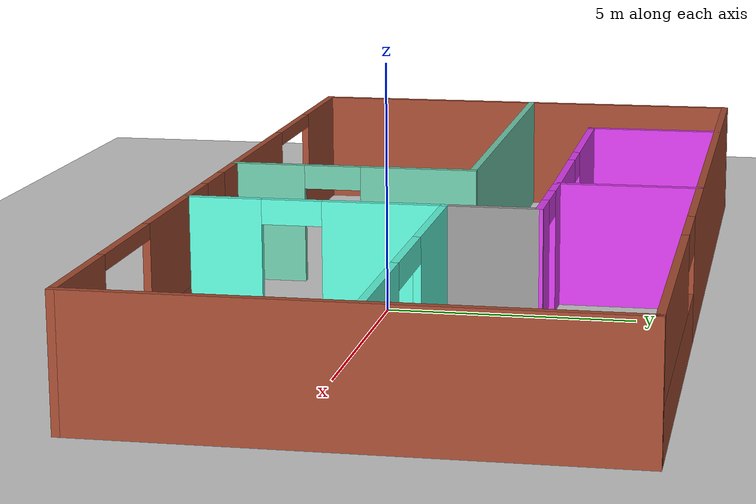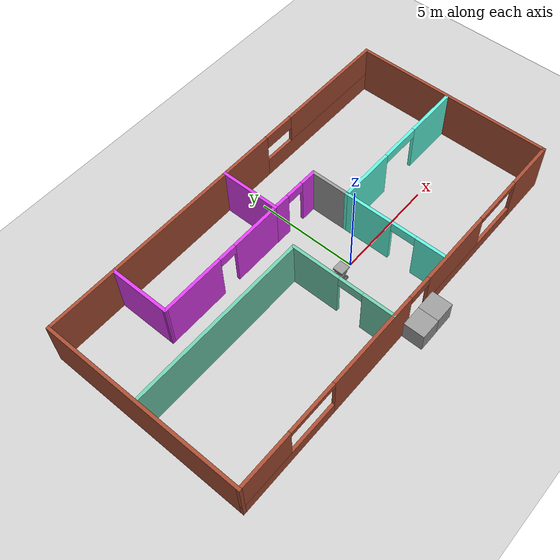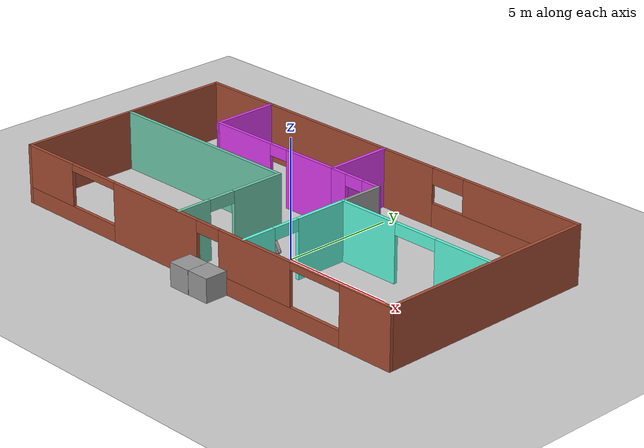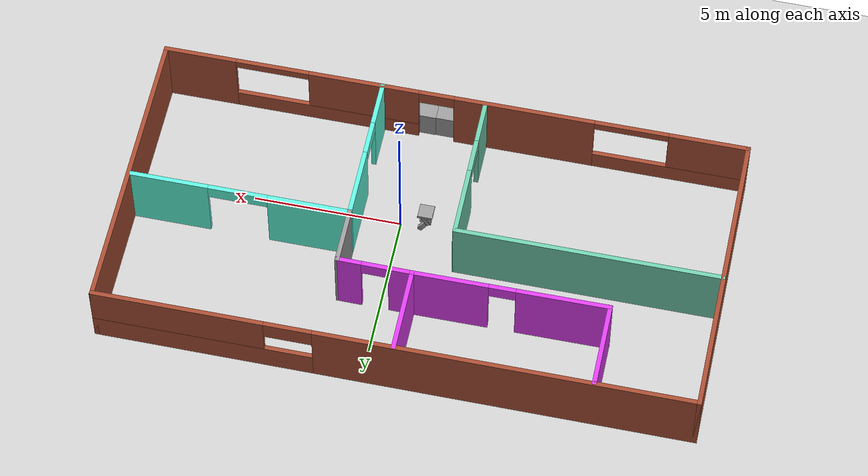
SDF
<sdf version="1.6">
 <world name="default">
  <model name="ground_plane">
   <static>1</static>
   <link name="link">
    <collision name="collision">
     <geometry><plane><normal>0 0 1</normal><size>100 100</size></plane></geometry>
     <surface>
      <contact><collide_bitmask>65535</collide_bitmask></contact>
      <friction><ode><mu>100</mu><mu2>50</mu2></ode></friction>
     </surface>
    </collision>
    <visual name="visual">
     <cast_shadows>0</cast_shadows>
     <geometry><plane><normal>0 0 1</normal><size>100 100</size></plane></geometry>
     <material>
      <script><uri>file://media/materials/scripts/gazebo.material</uri><name>Gazebo/Grey</name></script>
     </material>
    </visual>
   </link>
  </model>
  <model name="Building1">
   <pose>-1.0678 1.2025 0 0 -0 0</pose>
   <link name="Wall_10">
    <collision name="Wall_10_Collision">
     <geometry><box><size>10 0.15 2.5</size></box></geometry>
     <pose>0 0 1.25 0 -0 0</pose>
    </collision>
    <visual name="Wall_10_Visual">
     <pose>0 0 1.25 0 -0 0</pose>
     <geometry><box><size>10 0.15 2.5</size></box></geometry>
     <material>
      <script><uri>file://media/materials/scripts/gazebo.material</uri><name>Gazebo/Bricks</name></script>
      <ambient>1 1 1 1</ambient>
     </material>
     <meta><layer>0</layer></meta>
    </visual>
    <pose>-9.925 0 0 0 -0 1.5708</pose>
   </link>
   <link name="Wall_12">
    <pose>-0 4.925 0 0 -0 0</pose>
    <visual name="Wall_12_Visual_0">
     <pose>-3.67331 0 1.25 0 -0 0</pose>
     <geometry><box><size>12.6534 0.15 2.5</size></box></geometry>
     <material>
      <script><uri>file://media/materials/scripts/gazebo.material</uri><name>Gazebo/Bricks</name></script>
      <ambient>1 1 1 1</ambient>
     </material>
     <meta><layer>0</layer></meta>
    </visual>
    <collision name="Wall_12_Collision_0">
     <geometry><box><size>12.6534 0.15 2.5</size></box></geometry>
     <pose>-3.67331 0 1.25 0 -0 0</pose>
    </collision>
    <visual name="Wall_12_Visual_1">
     <pose>6.32669 0 0.5 0 -0 0</pose>
     <geometry><box><size>7.34662 0.15 1</size></box></geometry>
     <material>
      <script><uri>file://media/materials/scripts/gazebo.material</uri><name>Gazebo/Bricks</name></script>
      <ambient>1 1 1 1</ambient>
     </material>
     <meta><layer>0</layer></meta>
    </visual>
    <collision name="Wall_12_Collision_1">
     <geometry><box><size>7.34662 0.15 1</size></box></geometry>
     <pose>6.32669 0 0.5 0 -0 0</pose>
    </collision>
    <visual name="Wall_12_Visual_2">
     <pose>7.12669 0 1.75 0 -0 0</pose>
     <geometry><box><size>5.74662 0.15 1.5</size></box></geometry>
     <material>
      <script><uri>file://media/materials/scripts/gazebo.material</uri><name>Gazebo/Bricks</name></script>
      <ambient>1 1 1 1</ambient>
     </material>
     <meta><layer>0</layer></meta>
    </visual>
    <collision name="Wall_12_Collision_2">
     <geometry><box><size>5.74662 0.15 1.5</size></box></geometry>
     <pose>7.12669 0 1.75 0 -0 0</pose>
    </collision>
    <visual name="Wall_12_Visual_3">
     <pose>3.45338 0 2.15 0 -0 0</pose>
     <geometry><box><size>1.6 0.15 0.7</size></box></geometry>
     <material>
      <script><uri>file://media/materials/scripts/gazebo.material</uri><name>Gazebo/Bricks</name></script>
      <ambient>1 1 1 1</ambient>
     </material>
     <meta><layer>0</layer></meta>
    </visual>
    <collision name="Wall_12_Collision_3">
     <geometry><box><size>1.6 0.15 0.7</size></box></geometry>
     <pose>3.45338 0 2.15 0 -0 0</pose>
    </collision>
   </link>
   <link name="Wall_13">
    <collision name="Wall_13_Collision">
     <geometry><box><size>10 0.15 2.5</size></box></geometry>
     <pose>0 0 1.25 0 -0 0</pose>
    </collision>
    <visual name="Wall_13_Visual">
     <pose>0 0 1.25 0 -0 0</pose>
     <geometry><box><size>10 0.15 2.5</size></box></geometry>
     <material>
      <script><uri>file://media/materials/scripts/gazebo.material</uri><name>Gazebo/Bricks</name></script>
      <ambient>1 1 1 1</ambient>
     </material>
     <meta><layer>0</layer></meta>
    </visual>
    <pose>9.925 0 0 0 -0 -1.5708</pose>
   </link>
   <link name="Wall_14">
    <pose>-0 -4.925 0 0 -0 3.14159</pose>
    <visual name="Wall_14_Visual_0">
     <pose>-8.75026 0 1.25 0 -0 0</pose>
     <geometry><box><size>2.49948 0.15 2.5</size></box></geometry>
     <material>
      <script><uri>file://media/materials/scripts/gazebo.material</uri><name>Gazebo/Bricks</name></script>
      <ambient>1 1 1 1</ambient>
     </material>
     <meta><layer>0</layer></meta>
    </visual>
    <collision name="Wall_14_Collision_0">
     <geometry><box><size>2.49948 0.15 2.5</size></box></geometry>
     <pose>-8.75026 0 1.25 0 -0 0</pose>
    </collision>
    <visual name="Wall_14_Visual_1">
     <pose>2.37306 0 1.25 0 -0 0</pose>
     <geometry><box><size>4.76763 0.15 2.5</size></box></geometry>
     <material>
      <script><uri>file://media/materials/scripts/gazebo.material</uri><name>Gazebo/Bricks</name></script>
      <ambient>1 1 1 1</ambient>
     </material>
     <meta><layer>0</layer></meta>
    </visual>
    <collision name="Wall_14_Collision_1">
     <geometry><box><size>4.76763 0.15 2.5</size></box></geometry>
     <pose>2.37306 0 1.25 0 -0 0</pose>
    </collision>
    <visual name="Wall_14_Visual_2">
     <pose>-4.35564 0 0.35 0 -0 0</pose>
     <geometry><box><size>6.28977 0.15 0.7</size></box></geometry>
     <material>
      <script><uri>file://media/materials/scripts/gazebo.material</uri><name>Gazebo/Bricks</name></script>
      <ambient>1 1 1 1</ambient>
     </material>
     <meta><layer>0</layer></meta>
    </visual>
    <collision name="Wall_14_Collision_2">
     <geometry><box><size>6.28977 0.15 0.7</size></box></geometry>
     <pose>-4.35564 0 0.35 0 -0 0</pose>
    </collision>
    <visual name="Wall_14_Visual_3">
     <pose>7.37844 0 0.35 0 -0 0</pose>
     <geometry><box><size>5.24313 0.15 0.7</size></box></geometry>
     <material>
      <script><uri>file://media/materials/scripts/gazebo.material</uri><name>Gazebo/Bricks</name></script>
      <ambient>1 1 1 1</ambient>
     </material>
     <meta><layer>0</layer></meta>
    </visual>
    <collision name="Wall_14_Collision_3">
     <geometry><box><size>5.24313 0.15 0.7</size></box></geometry>
     <pose>7.37844 0 0.35 0 -0 0</pose>
    </collision>
    <visual name="Wall_14_Visual_4">
     <pose>-3.10564 0 1.6 0 -0 0</pose>
     <geometry><box><size>3.78977 0.15 1.8</size></box></geometry>
     <material>
      <script><uri>file://media/materials/scripts/gazebo.material</uri><name>Gazebo/Bricks</name></script>
      <ambient>1 1 1 1</ambient>
     </material>
     <meta><layer>0</layer></meta>
    </visual>
    <collision name="Wall_14_Collision_4">
     <geometry><box><size>3.78977 0.15 1.8</size></box></geometry>
     <pose>-3.10564 0 1.6 0 -0 0</pose>
    </collision>
    <visual name="Wall_14_Visual_5">
     <pose>-3.10564 0 1.6 0 -0 0</pose>
     <geometry><box><size>3.78977 0.15 1.8</size></box></geometry>
     <material>
      <script><uri>file://media/materials/scripts/gazebo.material</uri><name>Gazebo/Bricks</name></script>
      <ambient>1 1 1 1</ambient>
     </material>
     <meta><layer>0</layer></meta>
    </visual>
    <collision name="Wall_14_Collision_5">
     <geometry><box><size>3.78977 0.15 1.8</size></box></geometry>
     <pose>-3.10564 0 1.6 0 -0 0</pose>
    </collision>
    <visual name="Wall_14_Visual_6">
     <pose>8.62844 0 1.6 0 -0 0</pose>
     <geometry><box><size>2.74313 0.15 1.8</size></box></geometry>
     <material>
      <script><uri>file://media/materials/scripts/gazebo.material</uri><name>Gazebo/Bricks</name></script>
      <ambient>1 1 1 1</ambient>
     </material>
     <meta><layer>0</layer></meta>
    </visual>
    <collision name="Wall_14_Collision_6">
     <geometry><box><size>2.74313 0.15 1.8</size></box></geometry>
     <pose>8.62844 0 1.6 0 -0 0</pose>
    </collision>
    <visual name="Wall_14_Visual_7">
     <pose>-0.610755 0 2.25 0 -0 0</pose>
     <geometry><box><size>1.2 0.15 0.5</size></box></geometry>
     <material>
      <script><uri>file://media/materials/scripts/gazebo.material</uri><name>Gazebo/Bricks</name></script>
      <ambient>1 1 1 1</ambient>
     </material>
     <meta><layer>0</layer></meta>
    </visual>
    <collision name="Wall_14_Collision_7">
     <geometry><box><size>1.2 0.15 0.5</size></box></geometry>
     <pose>-0.610755 0 2.25 0 -0 0</pose>
    </collision>
    <visual name="Wall_14_Visual_8">
     <pose>-0.610755 0 2.25 0 -0 0</pose>
     <geometry><box><size>1.2 0.15 0.5</size></box></geometry>
     <material>
      <script><uri>file://media/materials/scripts/gazebo.material</uri><name>Gazebo/Bricks</name></script>
      <ambient>1 1 1 1</ambient>
     </material>
     <meta><layer>0</layer></meta>
    </visual>
    <collision name="Wall_14_Collision_8">
     <geometry><box><size>1.2 0.15 0.5</size></box></geometry>
     <pose>-0.610755 0 2.25 0 -0 0</pose>
    </collision>
    <visual name="Wall_14_Visual_9">
     <pose>-6.25052 0 2.35 0 -0 0</pose>
     <geometry><box><size>2.5 0.15 0.3</size></box></geometry>
     <material>
      <script><uri>file://media/materials/scripts/gazebo.material</uri><name>Gazebo/Bricks</name></script>
      <ambient>1 1 1 1</ambient>
     </material>
     <meta><layer>0</layer></meta>
    </visual>
    <collision name="Wall_14_Collision_9">
     <geometry><box><size>2.5 0.15 0.3</size></box></geometry>
     <pose>-6.25052 0 2.35 0 -0 0</pose>
    </collision>
    <visual name="Wall_14_Visual_10">
     <pose>6.00687 0 2.35 0 -0 0</pose>
     <geometry><box><size>2.5 0.15 0.3</size></box></geometry>
     <material>
      <script><uri>file://media/materials/scripts/gazebo.material</uri><name>Gazebo/Bricks</name></script>
      <ambient>1 1 1 1</ambient>
     </material>
     <meta><layer>0</layer></meta>
    </visual>
    <collision name="Wall_14_Collision_10">
     <geometry><box><size>2.5 0.15 0.3</size></box></geometry>
     <pose>6.00687 0 2.35 0 -0 0</pose>
    </collision>
   </link>
   <link name="Wall_16">
    <collision name="Wall_16_Collision">
     <geometry><box><size>9 0.15 2.5</size></box></geometry>
     <pose>0 0 1.25 0 -0 0</pose>
    </collision>
    <visual name="Wall_16_Visual">
     <pose>0 0 1.25 0 -0 0</pose>
     <geometry><box><size>9 0.15 2.5</size></box></geometry>
     <material>
      <script><uri>file://media/materials/scripts/gazebo.material</uri><name>Gazebo/Grey</name></script>
      <ambient>0.435294 0.796078 0.67451 1</ambient>
     </material>
     <meta><layer>0</layer></meta>
    </visual>
    <pose>-5.4835 0.182385 0 0 -0 0</pose>
   </link>
   <link name="Wall_17">
    <pose>-1.0585 -2.36761 0 0 -0 -1.5708</pose>
    <visual name="Wall_17_Visual_0">
     <pose>-1.39742 0 1.25 0 -0 0</pose>
     <geometry><box><size>2.45515 0.15 2.5</size></box></geometry>
     <material>
      <script><uri>file://media/materials/scripts/gazebo.material</uri><name>Gazebo/Grey</name></script>
      <ambient>0.435294 0.796078 0.67451 1</ambient>
     </material>
     <meta><layer>0</layer></meta>
    </visual>
    <collision name="Wall_17_Collision_0">
     <geometry><box><size>2.45515 0.15 2.5</size></box></geometry>
     <pose>-1.39742 0 1.25 0 -0 0</pose>
    </collision>
    <visual name="Wall_17_Visual_1">
     <pose>1.82757 0 1.25 0 -0 0</pose>
     <geometry><box><size>1.59485 0.15 2.5</size></box></geometry>
     <material>
      <script><uri>file://media/materials/scripts/gazebo.material</uri><name>Gazebo/Grey</name></script>
      <ambient>0.435294 0.796078 0.67451 1</ambient>
     </material>
     <meta><layer>0</layer></meta>
    </visual>
    <collision name="Wall_17_Collision_1">
     <geometry><box><size>1.59485 0.15 2.5</size></box></geometry>
     <pose>1.82757 0 1.25 0 -0 0</pose>
    </collision>
    <visual name="Wall_17_Visual_2">
     <pose>0.430149 0 2.25 0 -0 0</pose>
     <geometry><box><size>1.2 0.15 0.5</size></box></geometry>
     <material>
      <script><uri>file://media/materials/scripts/gazebo.material</uri><name>Gazebo/Grey</name></script>
      <ambient>0.435294 0.796078 0.67451 1</ambient>
     </material>
     <meta><layer>0</layer></meta>
    </visual>
    <collision name="Wall_17_Collision_2">
     <geometry><box><size>1.2 0.15 0.5</size></box></geometry>
     <pose>0.430149 0 2.25 0 -0 0</pose>
    </collision>
   </link>
   <link name="Wall_19">
    <pose>6.13498 0.195027 0 0 -0 0</pose>
    <visual name="Wall_19_Visual_0">
     <pose>-2.3286 0 1.25 0 -0 0</pose>
     <geometry><box><size>2.8428 0.15 2.5</size></box></geometry>
     <material>
      <script><uri>file://media/materials/scripts/gazebo.material</uri><name>Gazebo/Grey</name></script>
      <ambient>0.372549 0.988235 0.870588 1</ambient>
     </material>
     <meta><layer>0</layer></meta>
    </visual>
    <collision name="Wall_19_Collision_0">
     <geometry><box><size>2.8428 0.15 2.5</size></box></geometry>
     <pose>-2.3286 0 1.25 0 -0 0</pose>
    </collision>
    <visual name="Wall_19_Visual_1">
     <pose>2.4214 0 1.25 0 -0 0</pose>
     <geometry><box><size>2.6572 0.15 2.5</size></box></geometry>
     <material>
      <script><uri>file://media/materials/scripts/gazebo.material</uri><name>Gazebo/Grey</name></script>
      <ambient>0.372549 0.988235 0.870588 1</ambient>
     </material>
     <meta><layer>0</layer></meta>
    </visual>
    <collision name="Wall_19_Collision_1">
     <geometry><box><size>2.6572 0.15 2.5</size></box></geometry>
     <pose>2.4214 0 1.25 0 -0 0</pose>
    </collision>
    <visual name="Wall_19_Visual_2">
     <pose>0.092803 0 2.25 0 -0 0</pose>
     <geometry><box><size>2 0.15 0.5</size></box></geometry>
     <material>
      <script><uri>file://media/materials/scripts/gazebo.material</uri><name>Gazebo/Grey</name></script>
      <ambient>0.372549 0.988235 0.870588 1</ambient>
     </material>
     <meta><layer>0</layer></meta>
    </visual>
    <collision name="Wall_19_Collision_2">
     <geometry><box><size>2 0.15 0.5</size></box></geometry>
     <pose>0.092803 0 2.25 0 -0 0</pose>
    </collision>
   </link>
   <link name="Wall_21">
    <pose>2.45998 -2.35497 0 0 -0 -1.5708</pose>
    <visual name="Wall_21_Visual_0">
     <pose>-1.3911 0 1.25 0 -0 0</pose>
     <geometry><box><size>2.46779 0.15 2.5</size></box></geometry>
     <material>
      <script><uri>file://media/materials/scripts/gazebo.material</uri><name>Gazebo/Grey</name></script>
      <ambient>0.372549 0.988235 0.870588 1</ambient>
     </material>
     <meta><layer>0</layer></meta>
    </visual>
    <collision name="Wall_21_Collision_0">
     <geometry><box><size>2.46779 0.15 2.5</size></box></geometry>
     <pose>-1.3911 0 1.25 0 -0 0</pose>
    </collision>
    <visual name="Wall_21_Visual_1">
     <pose>1.8339 0 1.25 0 -0 0</pose>
     <geometry><box><size>1.58221 0.15 2.5</size></box></geometry>
     <material>
      <script><uri>file://media/materials/scripts/gazebo.material</uri><name>Gazebo/Grey</name></script>
      <ambient>0.372549 0.988235 0.870588 1</ambient>
     </material>
     <meta><layer>0</layer></meta>
    </visual>
    <collision name="Wall_21_Collision_1">
     <geometry><box><size>1.58221 0.15 2.5</size></box></geometry>
     <pose>1.8339 0 1.25 0 -0 0</pose>
    </collision>
    <visual name="Wall_21_Visual_2">
     <pose>0.442791 0 2.25 0 -0 0</pose>
     <geometry><box><size>1.2 0.15 0.5</size></box></geometry>
     <material>
      <script><uri>file://media/materials/scripts/gazebo.material</uri><name>Gazebo/Grey</name></script>
      <ambient>0.372549 0.988235 0.870588 1</ambient>
     </material>
     <meta><layer>0</layer></meta>
    </visual>
    <collision name="Wall_21_Collision_2">
     <geometry><box><size>1.2 0.15 0.5</size></box></geometry>
     <pose>0.442791 0 2.25 0 -0 0</pose>
    </collision>
   </link>
   <link name="Wall_25">
    <collision name="Wall_25_Collision">
     <geometry><box><size>3 0.15 2.5</size></box></geometry>
     <pose>0 0 1.25 0 -0 0</pose>
    </collision>
    <visual name="Wall_25_Visual">
     <pose>0 0 1.25 0 -0 0</pose>
     <geometry><box><size>3 0.15 2.5</size></box></geometry>
     <material>
      <script><uri>file://media/materials/scripts/gazebo.material</uri><name>Gazebo/Grey</name></script>
      <ambient>0.870588 0.235294 0.941176 1</ambient>
     </material>
     <meta><layer>0</layer></meta>
    </visual>
    <pose>-6.53487 3.46477 0 0 -0 -1.5708</pose>
   </link>
   <link name="Wall_27">
    <collision name="Wall_27_Collision">
     <geometry><box><size>3 0.15 2.5</size></box></geometry>
     <pose>0 0 1.25 0 -0 0</pose>
    </collision>
    <visual name="Wall_27_Visual">
     <pose>0 0 1.25 0 -0 0</pose>
     <geometry><box><size>3 0.15 2.5</size></box></geometry>
     <material>
      <script><uri>file://media/materials/scripts/gazebo.material</uri><name>Gazebo/Grey</name></script>
      <ambient>0.870588 0.235294 0.941176 1</ambient>
     </material>
     <meta><layer>0</layer></meta>
    </visual>
    <pose>-0.02299 3.49092 0 0 -0 -1.5708</pose>
   </link>
   <link name="Wall_28">
    <pose>-3.27893 2.05285 0 0 -0 -3.13758</pose>
    <visual name="Wall_28_Visual_0">
     <pose>-2.02786 0 1.25 0 -0 0</pose>
     <geometry><box><size>2.60622 0.15 2.5</size></box></geometry>
     <material>
      <script><uri>file://media/materials/scripts/gazebo.material</uri><name>Gazebo/Grey</name></script>
      <ambient>0.870588 0.235294 0.941176 1</ambient>
     </material>
     <meta><layer>0</layer></meta>
    </visual>
    <collision name="Wall_28_Collision_0">
     <geometry><box><size>2.60622 0.15 2.5</size></box></geometry>
     <pose>-2.02786 0 1.25 0 -0 0</pose>
    </collision>
    <visual name="Wall_28_Visual_1">
     <pose>1.75311 0 1.25 0 -0 0</pose>
     <geometry><box><size>3.15572 0.15 2.5</size></box></geometry>
     <material>
      <script><uri>file://media/materials/scripts/gazebo.material</uri><name>Gazebo/Grey</name></script>
      <ambient>0.870588 0.235294 0.941176 1</ambient>
     </material>
     <meta><layer>0</layer></meta>
    </visual>
    <collision name="Wall_28_Collision_1">
     <geometry><box><size>3.15572 0.15 2.5</size></box></geometry>
     <pose>1.75311 0 1.25 0 -0 0</pose>
    </collision>
    <visual name="Wall_28_Visual_2">
     <pose>-0.274751 0 2.25 0 -0 0</pose>
     <geometry><box><size>0.9 0.15 0.5</size></box></geometry>
     <material>
      <script><uri>file://media/materials/scripts/gazebo.material</uri><name>Gazebo/Grey</name></script>
      <ambient>0.870588 0.235294 0.941176 1</ambient>
     </material>
     <meta><layer>0</layer></meta>
    </visual>
    <collision name="Wall_28_Collision_2">
     <geometry><box><size>0.9 0.15 0.5</size></box></geometry>
     <pose>-0.274751 0 2.25 0 -0 0</pose>
    </collision>
   </link>
   <link name="Wall_30">
    <collision name="Wall_30_Collision">
     <geometry><box><size>2 0.15 2.5</size></box></geometry>
     <pose>0 0 1.25 0 -0 0</pose>
    </collision>
    <visual name="Wall_30_Visual">
     <pose>0 0 1.25 0 -0 0</pose>
     <geometry><box><size>2 0.15 2.5</size></box></geometry>
     <material>
      <script><uri>file://media/materials/scripts/gazebo.material</uri><name>Gazebo/Grey</name></script>
      <ambient>1 1 1 1</ambient>
     </material>
     <meta><layer>0</layer></meta>
    </visual>
    <pose>2.45998 1.12003 0 0 -0 1.5708</pose>
   </link>
   <link name="Wall_31">
    <pose>1.21849 2.05547 0 0 -0 3.13318</pose>
    <visual name="Wall_31_Visual_0">
     <pose>-0.877056 0 1.25 0 -0 0</pose>
     <geometry><box><size>0.878942 0.15 2.5</size></box></geometry>
     <material>
      <script><uri>file://media/materials/scripts/gazebo.material</uri><name>Gazebo/Grey</name></script>
      <ambient>0.870588 0.235294 0.941176 1</ambient>
     </material>
     <meta><layer>0</layer></meta>
    </visual>
    <collision name="Wall_31_Collision_0">
     <geometry><box><size>0.878942 0.15 2.5</size></box></geometry>
     <pose>-0.877056 0 1.25 0 -0 0</pose>
    </collision>
    <visual name="Wall_31_Visual_1">
     <pose>0.889471 0 1.25 0 -0 0</pose>
     <geometry><box><size>0.854112 0.15 2.5</size></box></geometry>
     <material>
      <script><uri>file://media/materials/scripts/gazebo.material</uri><name>Gazebo/Grey</name></script>
      <ambient>0.870588 0.235294 0.941176 1</ambient>
     </material>
     <meta><layer>0</layer></meta>
    </visual>
    <collision name="Wall_31_Collision_1">
     <geometry><box><size>0.854112 0.15 2.5</size></box></geometry>
     <pose>0.889471 0 1.25 0 -0 0</pose>
    </collision>
    <visual name="Wall_31_Visual_2">
     <pose>0.012415 0 2.25 0 -0 0</pose>
     <geometry><box><size>0.9 0.15 0.5</size></box></geometry>
     <material>
      <script><uri>file://media/materials/scripts/gazebo.material</uri><name>Gazebo/Grey</name></script>
      <ambient>0.870588 0.235294 0.941176 1</ambient>
     </material>
     <meta><layer>0</layer></meta>
    </visual>
    <collision name="Wall_31_Collision_2">
     <geometry><box><size>0.9 0.15 0.5</size></box></geometry>
     <pose>0.012415 0 2.25 0 -0 0</pose>
    </collision>
   </link>
   <static>1</static>
  </model>
  <model name="2LeggedBot">
   <link name="link_0">
    <inertial>
     <mass>1</mass>
     <inertia><ixx>0.1</ixx><ixy>0</ixy><ixz>0</ixz><iyy>0.1</iyy><iyz>0</iyz><izz>0.1</izz></inertia>
    </inertial>
    <pose>0.169699 -0.170527 -0.315363 0 -0 0</pose>
    <visual name="visual">
     <geometry><sphere><radius>0.1</radius></sphere></geometry>
     <material>
      <lighting>1</lighting>
      <script><uri>file://media/materials/scripts/gazebo.material</uri><name>Gazebo/Grey</name></script>
      <shader type="pixel"><normal_map>__default__</normal_map></shader>
      <ambient>0.3 0.3 0.3 1</ambient>
      <diffuse>0.7 0.7 0.7 1</diffuse>
      <specular>0.01 0.01 0.01 1</specular>
      <emissive>0 0 0 1</emissive>
     </material>
    </visual>
    <visual name="ModelPreview_2::link_0::visual_1">
     <geometry><sphere><radius>0.1</radius></sphere></geometry>
     <material>
      <lighting>1</lighting>
      <script><uri>file://media/materials/scripts/gazebo.material</uri><name>Gazebo/Grey</name></script>
      <shader type="pixel"><normal_map>__default__</normal_map></shader>
      <ambient>0.3 0.3 0.3 1</ambient>
      <diffuse>0.7 0.7 0.7 1</diffuse>
      <specular>0.01 0.01 0.01 1</specular>
      <emissive>0 0 0 1</emissive>
     </material>
    </visual>
    <collision name="collision">
     <geometry><sphere><radius>0.1</radius></sphere></geometry>
     <surface>
      <friction>
       <ode><mu>1</mu><mu2>1</mu2><fdir1>0 0 0</fdir1><slip1>0</slip1><slip2>0</slip2></ode>
       <torsional>
        <coefficient>1</coefficient>
        <patch_radius>0</patch_radius>
        <surface_radius>0</surface_radius>
        <use_patch_radius>1</use_patch_radius>
        <ode><slip>0</slip></ode>
       </torsional>
      </friction>
      <bounce><restitution_coefficient>0</restitution_coefficient><threshold>1e+06</threshold></bounce>
      <contact>
       <collide_without_contact>0</collide_without_contact>
       <collide_without_contact_bitmask>1</collide_without_contact_bitmask>
       <collide_bitmask>1</collide_bitmask>
       <ode>
        <soft_cfm>0</soft_cfm>
        <soft_erp>0.2</soft_erp>
        <kp>1e+13</kp>
        <kd>1</kd>
        <max_vel>0.01</max_vel>
        <min_depth>0</min_depth>
       </ode>
       <bullet>
        <split_impulse>1</split_impulse>
        <split_impulse_penetration_threshold>-0.01</split_impulse_penetration_threshold>
        <soft_cfm>0</soft_cfm>
        <soft_erp>0.2</soft_erp>
        <kp>1e+13</kp>
        <kd>1</kd>
       </bullet>
      </contact>
     </surface>
    </collision>
   </link>
   <link name="link_0_clone">
    <inertial>
     <mass>1</mass>
     <inertia><ixx>0.1</ixx><ixy>0</ixy><ixz>0</ixz><iyy>0.1</iyy><iyz>0</iyz><izz>0.1</izz></inertia>
    </inertial>
    <pose>0.169699 0.129473 -0.315363 0 -0 0</pose>
    <visual name="visual">
     <geometry><sphere><radius>0.1</radius></sphere></geometry>
     <material>
      <lighting>1</lighting>
      <script><uri>file://media/materials/scripts/gazebo.material</uri><name>Gazebo/Grey</name></script>
      <shader type="pixel"><normal_map>__default__</normal_map></shader>
      <ambient>0.3 0.3 0.3 1</ambient>
      <diffuse>0.7 0.7 0.7 1</diffuse>
      <specular>0.01 0.01 0.01 1</specular>
      <emissive>0 0 0 1</emissive>
     </material>
    </visual>
    <visual name="visual_1">
     <geometry><sphere><radius>0.1</radius></sphere></geometry>
     <material>
      <lighting>1</lighting>
      <script><uri>file://media/materials/scripts/gazebo.material</uri><name>Gazebo/Grey</name></script>
      <shader type="pixel"><normal_map>__default__</normal_map></shader>
      <ambient>0.3 0.3 0.3 1</ambient>
      <diffuse>0.7 0.7 0.7 1</diffuse>
      <specular>0.01 0.01 0.01 1</specular>
      <emissive>0 0 0 1</emissive>
     </material>
    </visual>
    <collision name="collision">
     <geometry><sphere><radius>0.1</radius></sphere></geometry>
     <surface>
      <friction>
       <ode><mu>1</mu><mu2>1</mu2><fdir1>0 0 0</fdir1><slip1>0</slip1><slip2>0</slip2></ode>
       <torsional>
        <coefficient>1</coefficient>
        <patch_radius>0</patch_radius>
        <surface_radius>0</surface_radius>
        <use_patch_radius>1</use_patch_radius>
        <ode><slip>0</slip></ode>
       </torsional>
      </friction>
      <bounce><restitution_coefficient>0</restitution_coefficient><threshold>1e+06</threshold></bounce>
      <contact>
       <collide_without_contact>0</collide_without_contact>
       <collide_without_contact_bitmask>1</collide_without_contact_bitmask>
       <collide_bitmask>1</collide_bitmask>
       <ode>
        <soft_cfm>0</soft_cfm>
        <soft_erp>0.2</soft_erp>
        <kp>1e+13</kp>
        <kd>1</kd>
        <max_vel>0.01</max_vel>
        <min_depth>0</min_depth>
       </ode>
       <bullet>
        <split_impulse>1</split_impulse>
        <split_impulse_penetration_threshold>-0.01</split_impulse_penetration_threshold>
        <soft_cfm>0</soft_cfm>
        <soft_erp>0.2</soft_erp>
        <kp>1e+13</kp>
        <kd>1</kd>
       </bullet>
      </contact>
     </surface>
    </collision>
   </link>
   <link name="link_0_clone_0">
    <inertial>
     <mass>1</mass>
     <inertia><ixx>0.1</ixx><ixy>0</ixy><ixz>0</ixz><iyy>0.1</iyy><iyz>0</iyz><izz>0.1</izz></inertia>
    </inertial>
    <pose>-0.088021 0.142639 0.064349 0 -0 0</pose>
    <visual name="visual_1">
     <geometry><sphere><radius>0.1</radius></sphere></geometry>
     <material>
      <lighting>1</lighting>
      <script><uri>file://media/materials/scripts/gazebo.material</uri><name>Gazebo/Grey</name></script>
      <shader type="pixel"><normal_map>__default__</normal_map></shader>
      <ambient>0.3 0.3 0.3 1</ambient>
      <diffuse>0.7 0.7 0.7 1</diffuse>
      <specular>0.01 0.01 0.01 1</specular>
      <emissive>0 0 0 1</emissive>
     </material>
    </visual>
    <visual name="visual">
     <geometry><sphere><radius>0.1</radius></sphere></geometry>
     <material>
      <lighting>1</lighting>
      <script><uri>file://media/materials/scripts/gazebo.material</uri><name>Gazebo/Grey</name></script>
      <shader type="pixel"><normal_map>__default__</normal_map></shader>
      <ambient>0.3 0.3 0.3 1</ambient>
      <diffuse>0.7 0.7 0.7 1</diffuse>
      <specular>0.01 0.01 0.01 1</specular>
      <emissive>0 0 0 1</emissive>
     </material>
    </visual>
    <collision name="collision">
     <geometry><sphere><radius>0.1</radius></sphere></geometry>
     <surface>
      <friction>
       <ode><mu>1</mu><mu2>1</mu2><fdir1>0 0 0</fdir1><slip1>0</slip1><slip2>0</slip2></ode>
       <torsional>
        <coefficient>1</coefficient>
        <patch_radius>0</patch_radius>
        <surface_radius>0</surface_radius>
        <use_patch_radius>1</use_patch_radius>
        <ode><slip>0</slip></ode>
       </torsional>
      </friction>
      <bounce><restitution_coefficient>0</restitution_coefficient><threshold>1e+06</threshold></bounce>
      <contact>
       <collide_without_contact>0</collide_without_contact>
       <collide_without_contact_bitmask>1</collide_without_contact_bitmask>
       <collide_bitmask>1</collide_bitmask>
       <ode>
        <soft_cfm>0</soft_cfm>
        <soft_erp>0.2</soft_erp>
        <kp>1e+13</kp>
        <kd>1</kd>
        <max_vel>0.01</max_vel>
        <min_depth>0</min_depth>
       </ode>
       <bullet>
        <split_impulse>1</split_impulse>
        <split_impulse_penetration_threshold>-0.01</split_impulse_penetration_threshold>
        <soft_cfm>0</soft_cfm>
        <soft_erp>0.2</soft_erp>
        <kp>1e+13</kp>
        <kd>1</kd>
       </bullet>
      </contact>
     </surface>
    </collision>
   </link>
   <link name="link_0_clone_1">
    <inertial>
     <mass>1</mass>
     <inertia><ixx>0.1</ixx><ixy>0</ixy><ixz>0</ixz><iyy>0.1</iyy><iyz>0</iyz><izz>0.1</izz></inertia>
    </inertial>
    <pose>-0.092915 -0.172952 0.04398 0 -0 0</pose>
    <visual name="visual">
     <geometry><sphere><radius>0.1</radius></sphere></geometry>
     <material>
      <lighting>1</lighting>
      <script><uri>file://media/materials/scripts/gazebo.material</uri><name>Gazebo/Grey</name></script>
      <shader type="pixel"><normal_map>__default__</normal_map></shader>
      <ambient>0.3 0.3 0.3 1</ambient>
      <diffuse>0.7 0.7 0.7 1</diffuse>
      <specular>0.01 0.01 0.01 1</specular>
      <emissive>0 0 0 1</emissive>
     </material>
    </visual>
    <visual name="visual_1">
     <geometry><sphere><radius>0.1</radius></sphere></geometry>
     <material>
      <lighting>1</lighting>
      <script><uri>file://media/materials/scripts/gazebo.material</uri><name>Gazebo/Grey</name></script>
      <shader type="pixel"><normal_map>__default__</normal_map></shader>
      <ambient>0.3 0.3 0.3 1</ambient>
      <diffuse>0.7 0.7 0.7 1</diffuse>
      <specular>0.01 0.01 0.01 1</specular>
      <emissive>0 0 0 1</emissive>
     </material>
    </visual>
    <collision name="collision">
     <geometry><sphere><radius>0.1</radius></sphere></geometry>
     <surface>
      <friction>
       <ode><mu>1</mu><mu2>1</mu2><fdir1>0 0 0</fdir1><slip1>0</slip1><slip2>0</slip2></ode>
       <torsional>
        <coefficient>1</coefficient>
        <patch_radius>0</patch_radius>
        <surface_radius>0</surface_radius>
        <use_patch_radius>1</use_patch_radius>
        <ode><slip>0</slip></ode>
       </torsional>
      </friction>
      <bounce><restitution_coefficient>0</restitution_coefficient><threshold>1e+06</threshold></bounce>
      <contact>
       <collide_without_contact>0</collide_without_contact>
       <collide_without_contact_bitmask>1</collide_without_contact_bitmask>
       <collide_bitmask>1</collide_bitmask>
       <ode>
        <soft_cfm>0</soft_cfm>
        <soft_erp>0.2</soft_erp>
        <kp>1e+13</kp>
        <kd>1</kd>
        <max_vel>0.01</max_vel>
        <min_depth>0</min_depth>
       </ode>
       <bullet>
        <split_impulse>1</split_impulse>
        <split_impulse_penetration_threshold>-0.01</split_impulse_penetration_threshold>
        <soft_cfm>0</soft_cfm>
        <soft_erp>0.2</soft_erp>
        <kp>1e+13</kp>
        <kd>1</kd>
       </bullet>
      </contact>
     </surface>
    </collision>
   </link>
   <link name="link_2">
    <inertial>
     <mass>1</mass>
     <inertia>
      <ixx>0.166667</ixx>
      <ixy>0</ixy>
      <ixz>0</ixz>
      <iyy>0.166667</iyy>
      <iyz>0</iyz>
      <izz>0.166667</izz>
     </inertia>
    </inertial>
    <pose>0.063484 -0.170527 -0.161345 0 -0.5234 0</pose>
    <visual name="visual">
     <geometry><box><size>0.15 0.15 0.5</size></box></geometry>
     <material>
      <lighting>1</lighting>
      <script><uri>file://media/materials/scripts/gazebo.material</uri><name>Gazebo/Grey</name></script>
      <shader type="pixel"><normal_map>__default__</normal_map></shader>
      <ambient>0.3 0.3 0.3 1</ambient>
      <diffuse>0.7 0.7 0.7 1</diffuse>
      <specular>0.01 0.01 0.01 1</specular>
      <emissive>0 0 0 1</emissive>
     </material>
    </visual>
    <collision name="collision">
     <geometry><box><size>0.15 0.15 0.5</size></box></geometry>
     <surface>
      <friction>
       <ode><mu>1</mu><mu2>1</mu2><fdir1>0 0 0</fdir1><slip1>0</slip1><slip2>0</slip2></ode>
       <torsional>
        <coefficient>1</coefficient>
        <patch_radius>0</patch_radius>
        <surface_radius>0</surface_radius>
        <use_patch_radius>1</use_patch_radius>
        <ode><slip>0</slip></ode>
       </torsional>
      </friction>
      <bounce><restitution_coefficient>0</restitution_coefficient><threshold>1e+06</threshold></bounce>
      <contact>
       <collide_without_contact>0</collide_without_contact>
       <collide_without_contact_bitmask>1</collide_without_contact_bitmask>
       <collide_bitmask>1</collide_bitmask>
       <ode>
        <soft_cfm>0</soft_cfm>
        <soft_erp>0.2</soft_erp>
        <kp>1e+13</kp>
        <kd>1</kd>
        <max_vel>0.01</max_vel>
        <min_depth>0</min_depth>
       </ode>
       <bullet>
        <split_impulse>1</split_impulse>
        <split_impulse_penetration_threshold>-0.01</split_impulse_penetration_threshold>
        <soft_cfm>0</soft_cfm>
        <soft_erp>0.2</soft_erp>
        <kp>1e+13</kp>
        <kd>1</kd>
       </bullet>
      </contact>
     </surface>
    </collision>
   </link>
   <link name="link_2_clone">
    <inertial>
     <mass>1</mass>
     <inertia>
      <ixx>0.166667</ixx>
      <ixy>0</ixy>
      <ixz>0</ixz>
      <iyy>0.166667</iyy>
      <iyz>0</iyz>
      <izz>0.166667</izz>
     </inertia>
    </inertial>
    <pose>0.001286 0.142639 0.21857 0 0.52 0</pose>
    <visual name="visual">
     <geometry><box><size>0.15 0.15 0.5</size></box></geometry>
     <material>
      <lighting>1</lighting>
      <script><uri>file://media/materials/scripts/gazebo.material</uri><name>Gazebo/Grey</name></script>
      <shader type="pixel"><normal_map>__default__</normal_map></shader>
      <ambient>0.3 0.3 0.3 1</ambient>
      <diffuse>0.7 0.7 0.7 1</diffuse>
      <specular>0.01 0.01 0.01 1</specular>
      <emissive>0 0 0 1</emissive>
     </material>
    </visual>
    <collision name="collision">
     <geometry><box><size>0.15 0.15 0.5</size></box></geometry>
     <surface>
      <friction>
       <ode><mu>1</mu><mu2>1</mu2><fdir1>0 0 0</fdir1><slip1>0</slip1><slip2>0</slip2></ode>
       <torsional>
        <coefficient>1</coefficient>
        <patch_radius>0</patch_radius>
        <surface_radius>0</surface_radius>
        <use_patch_radius>1</use_patch_radius>
        <ode><slip>0</slip></ode>
       </torsional>
      </friction>
      <bounce><restitution_coefficient>0</restitution_coefficient><threshold>1e+06</threshold></bounce>
      <contact>
       <collide_without_contact>0</collide_without_contact>
       <collide_without_contact_bitmask>1</collide_without_contact_bitmask>
       <collide_bitmask>1</collide_bitmask>
       <ode>
        <soft_cfm>0</soft_cfm>
        <soft_erp>0.2</soft_erp>
        <kp>1e+13</kp>
        <kd>1</kd>
        <max_vel>0.01</max_vel>
        <min_depth>0</min_depth>
       </ode>
       <bullet>
        <split_impulse>1</split_impulse>
        <split_impulse_penetration_threshold>-0.01</split_impulse_penetration_threshold>
        <soft_cfm>0</soft_cfm>
        <soft_erp>0.2</soft_erp>
        <kp>1e+13</kp>
        <kd>1</kd>
       </bullet>
      </contact>
     </surface>
    </collision>
   </link>
   <link name="link_2_clone_0">
    <inertial>
     <mass>1</mass>
     <inertia>
      <ixx>0.166667</ixx>
      <ixy>0</ixy>
      <ixz>0</ixz>
      <iyy>0.166667</iyy>
      <iyz>0</iyz>
      <izz>0.166667</izz>
     </inertia>
    </inertial>
    <pose>0.079782 0.129473 -0.161345 0 -0.5234 0</pose>
    <visual name="visual">
     <geometry><box><size>0.15 0.15 0.5</size></box></geometry>
     <material>
      <lighting>1</lighting>
      <script><uri>file://media/materials/scripts/gazebo.material</uri><name>Gazebo/Grey</name></script>
      <shader type="pixel"><normal_map>__default__</normal_map></shader>
      <ambient>0.3 0.3 0.3 1</ambient>
      <diffuse>0.7 0.7 0.7 1</diffuse>
      <specular>0.01 0.01 0.01 1</specular>
      <emissive>0 0 0 1</emissive>
     </material>
    </visual>
    <collision name="collision">
     <geometry><box><size>0.15 0.15 0.5</size></box></geometry>
     <surface>
      <friction>
       <ode><mu>1</mu><mu2>1</mu2><fdir1>0 0 0</fdir1><slip1>0</slip1><slip2>0</slip2></ode>
       <torsional>
        <coefficient>1</coefficient>
        <patch_radius>0</patch_radius>
        <surface_radius>0</surface_radius>
        <use_patch_radius>1</use_patch_radius>
        <ode><slip>0</slip></ode>
       </torsional>
      </friction>
      <bounce><restitution_coefficient>0</restitution_coefficient><threshold>1e+06</threshold></bounce>
      <contact>
       <collide_without_contact>0</collide_without_contact>
       <collide_without_contact_bitmask>1</collide_without_contact_bitmask>
       <collide_bitmask>1</collide_bitmask>
       <ode>
        <soft_cfm>0</soft_cfm>
        <soft_erp>0.2</soft_erp>
        <kp>1e+13</kp>
        <kd>1</kd>
        <max_vel>0.01</max_vel>
        <min_depth>0</min_depth>
       </ode>
       <bullet>
        <split_impulse>1</split_impulse>
        <split_impulse_penetration_threshold>-0.01</split_impulse_penetration_threshold>
        <soft_cfm>0</soft_cfm>
        <soft_erp>0.2</soft_erp>
        <kp>1e+13</kp>
        <kd>1</kd>
       </bullet>
      </contact>
     </surface>
    </collision>
   </link>
   <link name="link_2_clone_clone">
    <inertial>
     <mass>1</mass>
     <inertia>
      <ixx>0.166667</ixx>
      <ixy>0</ixy>
      <ixz>0</ixz>
      <iyy>0.166667</iyy>
      <iyz>0</iyz>
      <izz>0.166667</izz>
     </inertia>
    </inertial>
    <pose>-0.003609 -0.172952 0.1982 0 0.52 0</pose>
    <visual name="visual">
     <geometry><box><size>0.15 0.15 0.5</size></box></geometry>
     <material>
      <lighting>1</lighting>
      <script><uri>file://media/materials/scripts/gazebo.material</uri><name>Gazebo/Grey</name></script>
      <shader type="pixel"><normal_map>__default__</normal_map></shader>
      <ambient>0.3 0.3 0.3 1</ambient>
      <diffuse>0.7 0.7 0.7 1</diffuse>
      <specular>0.01 0.01 0.01 1</specular>
      <emissive>0 0 0 1</emissive>
     </material>
    </visual>
    <collision name="collision">
     <geometry><box><size>0.15 0.15 0.5</size></box></geometry>
     <surface>
      <friction>
       <ode><mu>1</mu><mu2>1</mu2><fdir1>0 0 0</fdir1><slip1>0</slip1><slip2>0</slip2></ode>
       <torsional>
        <coefficient>1</coefficient>
        <patch_radius>0</patch_radius>
        <surface_radius>0</surface_radius>
        <use_patch_radius>1</use_patch_radius>
        <ode><slip>0</slip></ode>
       </torsional>
      </friction>
      <bounce><restitution_coefficient>0</restitution_coefficient><threshold>1e+06</threshold></bounce>
      <contact>
       <collide_without_contact>0</collide_without_contact>
       <collide_without_contact_bitmask>1</collide_without_contact_bitmask>
       <collide_bitmask>1</collide_bitmask>
       <ode>
        <soft_cfm>0</soft_cfm>
        <soft_erp>0.2</soft_erp>
        <kp>1e+13</kp>
        <kd>1</kd>
        <max_vel>0.01</max_vel>
        <min_depth>0</min_depth>
       </ode>
       <bullet>
        <split_impulse>1</split_impulse>
        <split_impulse_penetration_threshold>-0.01</split_impulse_penetration_threshold>
        <soft_cfm>0</soft_cfm>
        <soft_erp>0.2</soft_erp>
        <kp>1e+13</kp>
        <kd>1</kd>
       </bullet>
      </contact>
     </surface>
    </collision>
   </link>
   <link name="link_3">
    <inertial>
     <mass>1</mass>
     <inertia>
      <ixx>0.166667</ixx>
      <ixy>0</ixy>
      <ixz>0</ixz>
      <iyy>0.166667</iyy>
      <iyz>0</iyz>
      <izz>0.166667</izz>
     </inertia>
    </inertial>
    <pose>0.014885 -0.015108 0.428317 0 -0 0</pose>
    <visual name="visual">
     <geometry><box><size>0.5 0.5 0.1</size></box></geometry>
     <material>
      <lighting>1</lighting>
      <script><uri>file://media/materials/scripts/gazebo.material</uri><name>Gazebo/Grey</name></script>
      <shader type="pixel"><normal_map>__default__</normal_map></shader>
      <ambient>0.3 0.3 0.3 1</ambient>
      <diffuse>0.7 0.7 0.7 1</diffuse>
      <specular>0.01 0.01 0.01 1</specular>
      <emissive>0 0 0 1</emissive>
     </material>
    </visual>
    <collision name="collision">
     <geometry><box><size>0.5 0.5 0.1</size></box></geometry>
     <surface>
      <friction>
       <ode><mu>1</mu><mu2>1</mu2><fdir1>0 0 0</fdir1><slip1>0</slip1><slip2>0</slip2></ode>
       <torsional>
        <coefficient>1</coefficient>
        <patch_radius>0</patch_radius>
        <surface_radius>0</surface_radius>
        <use_patch_radius>1</use_patch_radius>
        <ode><slip>0</slip></ode>
       </torsional>
      </friction>
      <bounce><restitution_coefficient>0</restitution_coefficient><threshold>1e+06</threshold></bounce>
      <contact>
       <collide_without_contact>0</collide_without_contact>
       <collide_without_contact_bitmask>1</collide_without_contact_bitmask>
       <collide_bitmask>1</collide_bitmask>
       <ode>
        <soft_cfm>0</soft_cfm>
        <soft_erp>0.2</soft_erp>
        <kp>1e+13</kp>
        <kd>1</kd>
        <max_vel>0.01</max_vel>
        <min_depth>0</min_depth>
       </ode>
       <bullet>
        <split_impulse>1</split_impulse>
        <split_impulse_penetration_threshold>-0.01</split_impulse_penetration_threshold>
        <soft_cfm>0</soft_cfm>
        <soft_erp>0.2</soft_erp>
        <kp>1e+13</kp>
        <kd>1</kd>
       </bullet>
      </contact>
     </surface>
    </collision>
   </link>
   <joint name="link_0_clone_0_JOINT_4" type="revolute">
    <parent>link_0_clone_0</parent>
    <child>link_2_clone</child>
    <axis>
     <xyz>1 0 0</xyz>
     <limit>
      <lower>-1.79769e+308</lower>
      <upper>1.79769e+308</upper>
      <effort>-1</effort>
      <velocity>-1</velocity>
     </limit>
     <dynamics>
      <spring_reference>0</spring_reference>
      <spring_stiffness>0</spring_stiffness>
      <damping>0</damping>
      <friction>0</friction>
     </dynamics>
     <use_parent_model_frame>0</use_parent_model_frame>
    </axis>
    <physics>
     <ode><limit><cfm>0</cfm><erp>0.2</erp></limit><suspension><cfm>0</cfm><erp>0.2</erp></suspension></ode>
    </physics>
   </joint>
   <joint name="link_0_clone_1_JOINT_5" type="revolute">
    <parent>link_0_clone_1</parent>
    <child>link_2_clone_clone</child>
    <axis>
     <xyz>1 0 0</xyz>
     <limit>
      <lower>-1.79769e+308</lower>
      <upper>1.79769e+308</upper>
      <effort>-1</effort>
      <velocity>-1</velocity>
     </limit>
     <dynamics>
      <spring_reference>0</spring_reference>
      <spring_stiffness>0</spring_stiffness>
      <damping>0</damping>
      <friction>0</friction>
     </dynamics>
     <use_parent_model_frame>0</use_parent_model_frame>
    </axis>
    <physics>
     <ode><limit><cfm>0</cfm><erp>0.2</erp></limit><suspension><cfm>0</cfm><erp>0.2</erp></suspension></ode>
    </physics>
   </joint>
   <joint name="link_0_clone_JOINT_1" type="fixed">
    <parent>link_0_clone</parent>
    <child>link_2_clone_0</child>
    <physics>
     <ode><limit><cfm>0</cfm><erp>0.2</erp></limit><suspension><cfm>0</cfm><erp>0.2</erp></suspension></ode>
    </physics>
   </joint>
   <joint name="link_2_JOINT_0" type="fixed">
    <parent>link_0</parent>
    <child>link_2</child>
    <physics>
     <ode><limit><cfm>0</cfm><erp>0.2</erp></limit><suspension><cfm>0</cfm><erp>0.2</erp></suspension></ode>
    </physics>
   </joint>
   <joint name="link_2_JOINT_2" type="revolute">
    <parent>link_2</parent>
    <child>link_0_clone_1</child>
    <axis>
     <xyz>1 0 0</xyz>
     <limit>
      <lower>-1.79769e+308</lower>
      <upper>1.79769e+308</upper>
      <effort>-1</effort>
      <velocity>-1</velocity>
     </limit>
     <dynamics>
      <spring_reference>0</spring_reference>
      <spring_stiffness>0</spring_stiffness>
      <damping>0</damping>
      <friction>0</friction>
     </dynamics>
     <use_parent_model_frame>0</use_parent_model_frame>
    </axis>
    <physics>
     <ode><limit><cfm>0</cfm><erp>0.2</erp></limit><suspension><cfm>0</cfm><erp>0.2</erp></suspension></ode>
    </physics>
   </joint>
   <joint name="link_2_clone_0_JOINT_3" type="fixed">
    <parent>link_2_clone_0</parent>
    <child>link_0_clone_0</child>
    <physics>
     <ode><limit><cfm>0</cfm><erp>0.2</erp></limit><suspension><cfm>0</cfm><erp>0.2</erp></suspension></ode>
    </physics>
   </joint>
   <joint name="link_2_clone_JOINT_8" type="fixed">
    <parent>link_2_clone</parent>
    <child>link_3</child>
    <physics>
     <ode><limit><cfm>0</cfm><erp>0.2</erp></limit><suspension><cfm>0</cfm><erp>0.2</erp></suspension></ode>
    </physics>
   </joint>
   <joint name="link_3_JOINT_7" type="fixed">
    <parent>link_3</parent>
    <child>link_2_clone_clone</child>
    <physics>
     <ode><limit><cfm>0</cfm><erp>0.2</erp></limit><suspension><cfm>0</cfm><erp>0.2</erp></suspension></ode>
    </physics>
   </joint>
   <static>1</static>
   <pose>-0.864417 -0.116722 0.422143 0 -0 0</pose>
  </model>
  <model name="unit_box">
   <pose>-0.916533 -4.30316 0.5 0 0 -0.004005</pose>
   <link name="link">
    <inertial>
     <mass>1</mass>
     <inertia>
      <ixx>0.166667</ixx>
      <ixy>0</ixy>
      <ixz>0</ixz>
      <iyy>0.166667</iyy>
      <iyz>0</iyz>
      <izz>0.166667</izz>
     </inertia>
    </inertial>
    <collision name="collision"><geometry><box><size>1 1 1</size></box></geometry></collision>
    <visual name="visual">
     <geometry><box><size>1 1 1</size></box></geometry>
     <material>
      <script><name>Gazebo/Grey</name><uri>file://media/materials/scripts/gazebo.material</uri></script>
     </material>
    </visual>
   </link>
  </model>
  <model name="unit_box_0">
   <pose>0.083516 -4.29727 0.499995 -1e-05 -0 -0.003987</pose>
   <link name="link">
    <inertial>
     <mass>1</mass>
     <inertia>
      <ixx>0.166667</ixx>
      <ixy>0</ixy>
      <ixz>0</ixz>
      <iyy>0.166667</iyy>
      <iyz>0</iyz>
      <izz>0.166667</izz>
     </inertia>
    </inertial>
    <collision name="collision"><geometry><box><size>1 1 1</size></box></geometry></collision>
    <visual name="visual">
     <geometry><box><size>1 1 1</size></box></geometry>
     <material>
      <script><name>Gazebo/Grey</name><uri>file://media/materials/scripts/gazebo.material</uri></script>
     </material>
    </visual>
   </link>
  </model>
 </world>
</sdf>
